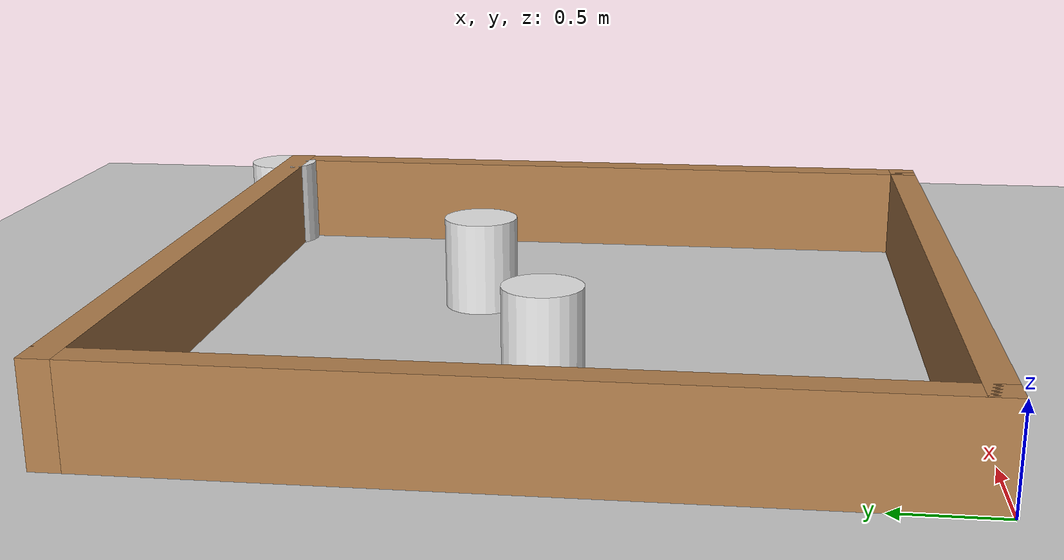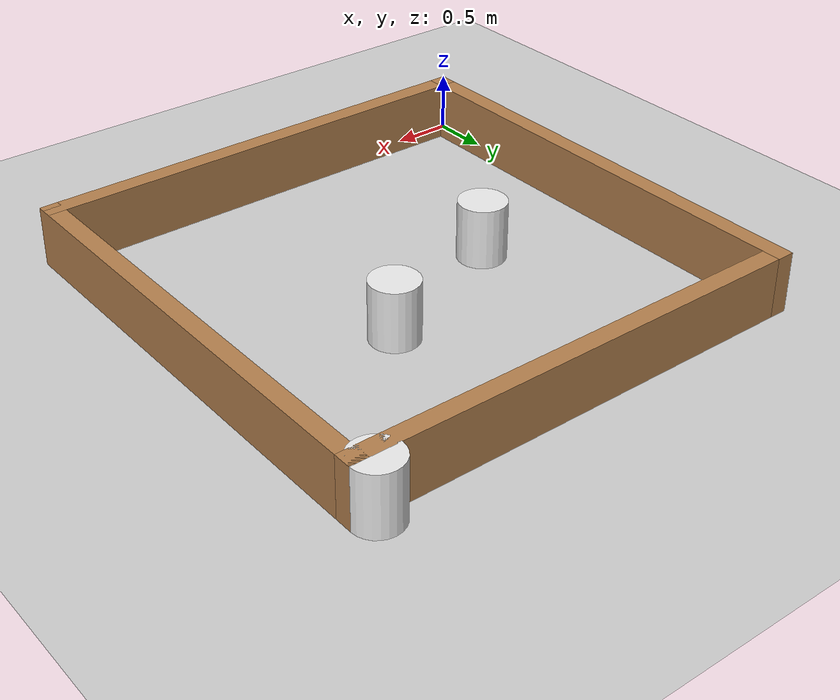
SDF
<?xml version="1.0" ?>
<sdf version="1.5">
  <world name="default">
    <!-- A global light source -->
    <include>
      <uri>model://sun</uri>
    </include>
    <!-- A ground plane -->
    <include>
      <uri>model://ground_plane</uri>
    </include>

   <!-- Load model -->
   <include>
      <pose>2 2 0 0 0 0</pose>
      <uri>model://turtlebot3_square</uri>
    </include>

    <!-- Load model -->
   <model name='obstacle'>
      <pose frame=''>0 0 0 0 -0 0</pose>
      <link name='obstacle'>
        <collision name='obstacle_1'>
          <pose>1.25 2 0.25 0 0 0</pose>
          <geometry>
            <cylinder>
              <radius>0.2</radius>
              <length>0.5</length>
            </cylinder>
          </geometry>
          <max_contacts>10</max_contacts>
          <surface>
            <bounce/>
            <friction>
              <ode/>
            </friction>
            <contact>
              <ode/>
            </contact>
          </surface>
        </collision>

        <visual name='obstacle_1'>
          <pose>1.25 2 0.25 0 0 0</pose>
          <geometry>
            <cylinder>
              <radius>0.2</radius>
              <length>0.5</length>
            </cylinder>
          </geometry>
          <material>
            <script>
              <uri>file://media/materials/scripts/gazebo.material</uri>
              <name>Gazebo/White</name>
            </script>
          </material>
        </visual>

      </link>
      <static>1</static>
    </model>

 <!-- Load model -->
   <model name='obstacle1'>
      <pose frame=''>0 0 0 0 -0 0</pose>
      <link name='obstacle1'>
        <collision name='obstacle_2'>
          <pose>2.5 2.5 0.25 0 0 0</pose>
          <geometry>
            <cylinder>
              <radius>0.2</radius>
              <length>0.5</length>
            </cylinder>
          </geometry>
          <max_contacts>10</max_contacts>
          <surface>
            <bounce/>
            <friction>
              <ode/>
            </friction>
            <contact>
              <ode/>
            </contact>
          </surface>
        </collision>

        <visual name='obstacle_2'>
          <pose>2.5 2.5 0.25 0 0 0</pose>
          <geometry>
            <cylinder>
              <radius>0.2</radius>
              <length>0.5</length>
            </cylinder>
          </geometry>
          <material>
            <script>
              <uri>file://media/materials/scripts/gazebo.material</uri>
              <name>Gazebo/White</name>
            </script>
          </material>
        </visual>

      </link>
      <static>1</static>
    </model>

 <!-- Load model -->
   <model name='obstacle2'>
      <pose frame=''>0 0 0 0 -0 0</pose>
      <link name='obstacle2'>
        <collision name='obstacle_3'>
          <pose>3.8 4 0.25 0 0 0</pose>
          <geometry>
            <cylinder>
              <radius>0.2</radius>
              <length>0.5</length>
            </cylinder>
          </geometry>
          <max_contacts>10</max_contacts>
          <surface>
            <bounce/>
            <friction>
              <ode/>
            </friction>
            <contact>
              <ode/>
            </contact>
          </surface>
        </collision>

        <visual name='obstacle_3'>
          <pose>3.8 4 0.25 0 0 0</pose>
          <geometry>
            <cylinder>
              <radius>0.2</radius>
              <length>0.5</length>
            </cylinder>
          </geometry>
          <material>
            <script>
              <uri>file://media/materials/scripts/gazebo.material</uri>
              <name>Gazebo/White</name>
            </script>
          </material>
        </visual>

      </link>
      <static>1</static>
    </model>

  </world>
</sdf>

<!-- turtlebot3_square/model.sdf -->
<sdf version='1.6'>
  <model name='turtlebot3_square'>
    <pose frame=''>0 0 0 0 -0 0</pose>
    <link name='Wall_0'>
      <collision name='Wall_0_Collision'>
        <geometry>
          <box>
            <size>4 0.15 0.5</size>
          </box>
        </geometry>
        <pose frame=''>0 0 0.25 0 -0 0</pose>
      </collision>
      <visual name='Wall_0_Visual'>
        <pose frame=''>0 0 0.25 0 -0 0</pose>
        <geometry>
          <box>
            <size>4 0.15 0.5</size>
          </box>
        </geometry>
        <material>
          <script>
            <uri>file://media/materials/scripts/gazebo.material</uri>
            <name>Gazebo/Wood</name>
          </script>
          <ambient>1 1 1 1</ambient>
        </material>
      </visual>
      <pose frame=''>0 1.925 0 0 -0 0</pose>
    </link>
    <link name='Wall_2'>
      <collision name='Wall_2_Collision'>
        <geometry>
          <box>
            <size>4 0.15 0.5</size>
          </box>
        </geometry>
        <pose frame=''>0 0 0.25 0 -0 0</pose>
      </collision>
      <visual name='Wall_2_Visual'>
        <pose frame=''>0 0 0.25 0 -0 0</pose>
        <geometry>
          <box>
            <size>4 0.15 0.5</size>
          </box>
        </geometry>
        <material>
          <script>
            <uri>file://media/materials/scripts/gazebo.material</uri>
            <name>Gazebo/Wood</name>
          </script>
          <ambient>1 1 1 1</ambient>
        </material>
      </visual>
      <pose frame=''>-1.925 0 0 0 0 -1.5708</pose>
    </link>
    <link name='Wall_3'>
      <collision name='Wall_3_Collision'>
        <geometry>
          <box>
            <size>4 0.15 0.5</size>
          </box>
        </geometry>
        <pose frame=''>0 0 0.25 0 -0 0</pose>
      </collision>
      <visual name='Wall_3_Visual'>
        <pose frame=''>0 0 0.25 0 -0 0</pose>
        <geometry>
          <box>
            <size>4 0.15 0.5</size>
          </box>
        </geometry>
        <material>
          <script>
            <uri>file://media/materials/scripts/gazebo.material</uri>
            <name>Gazebo/Wood</name>
          </script>
          <ambient>1 1 1 1</ambient>
        </material>
      </visual>
      <pose frame=''>0 -1.925 0 0 -0 0</pose>
    </link>
    <link name='Wall_4'>
      <collision name='Wall_4_Collision'>
        <geometry>
          <box>
            <size>4 0.15 0.5</size>
          </box>
        </geometry>
        <pose frame=''>0 0 0.25 0 -0 0</pose>
      </collision>
      <visual name='Wall_4_Visual'>
        <pose frame=''>0 0 0.25 0 -0 0</pose>
        <geometry>
          <box>
            <size>4 0.15 0.5</size>
          </box>
        </geometry>
        <material>
          <script>
            <uri>file://media/materials/scripts/gazebo.material</uri>
            <name>Gazebo/Wood</name>
          </script>
          <ambient>1 1 1 1</ambient>
        </material>
      </visual>
      <pose frame=''>1.925 0 0 0 -0 1.5708</pose>
    </link>
    <static>1</static>
  </model>
</sdf>
